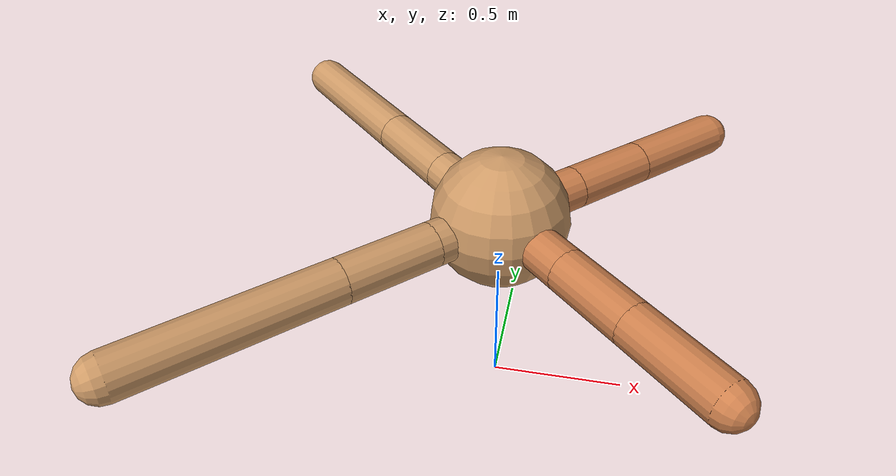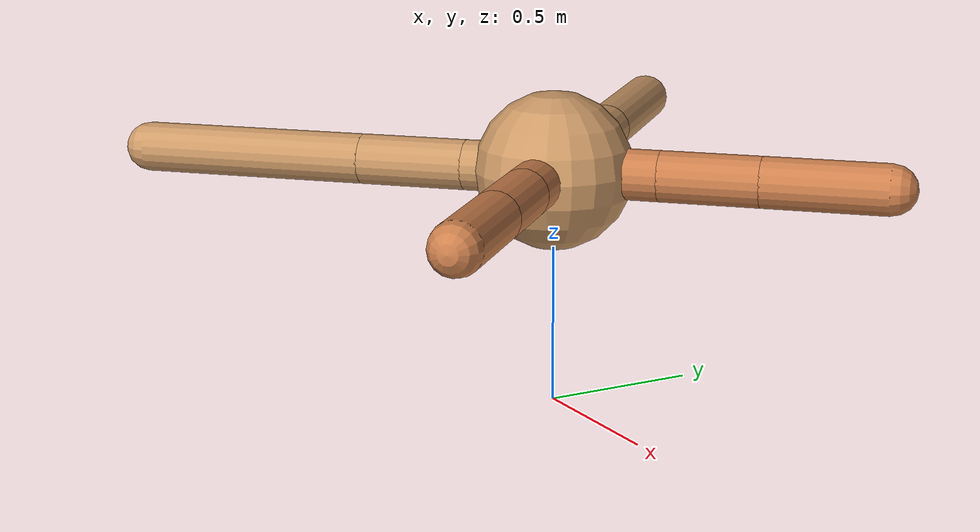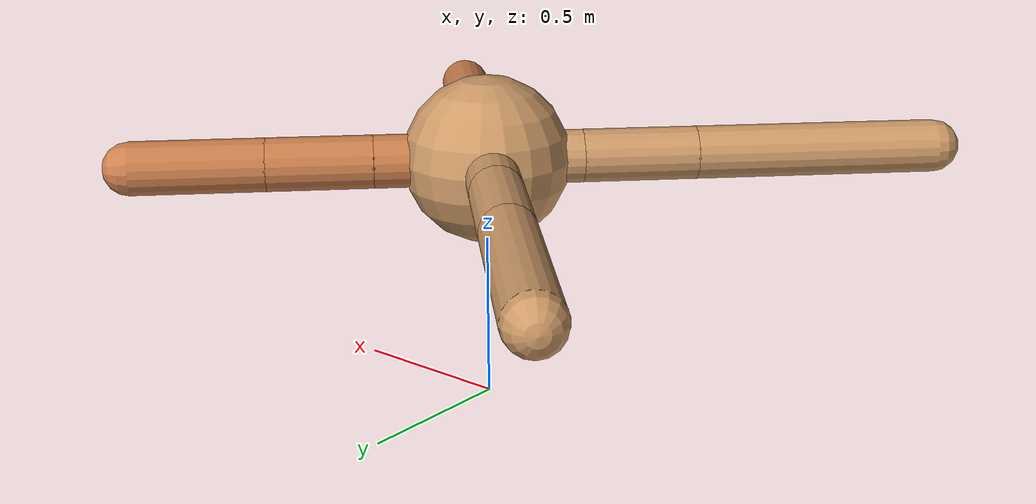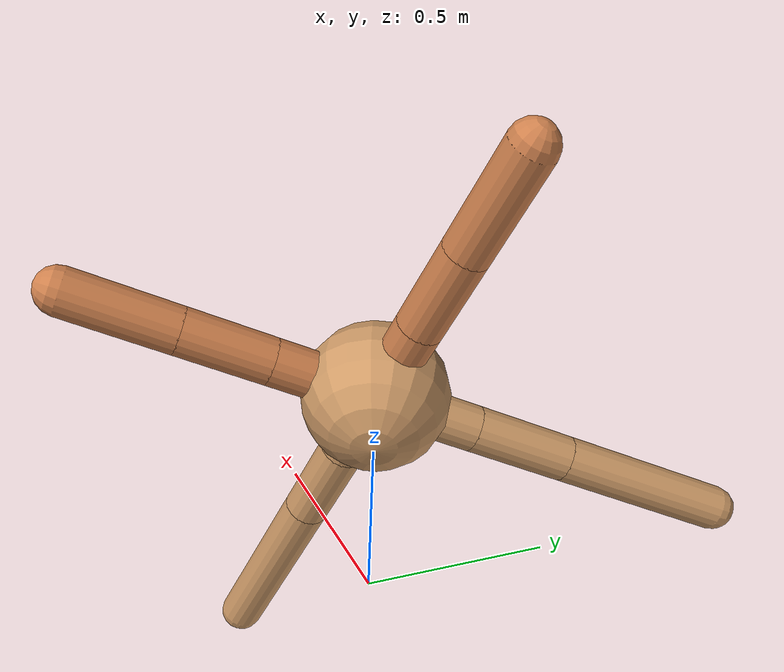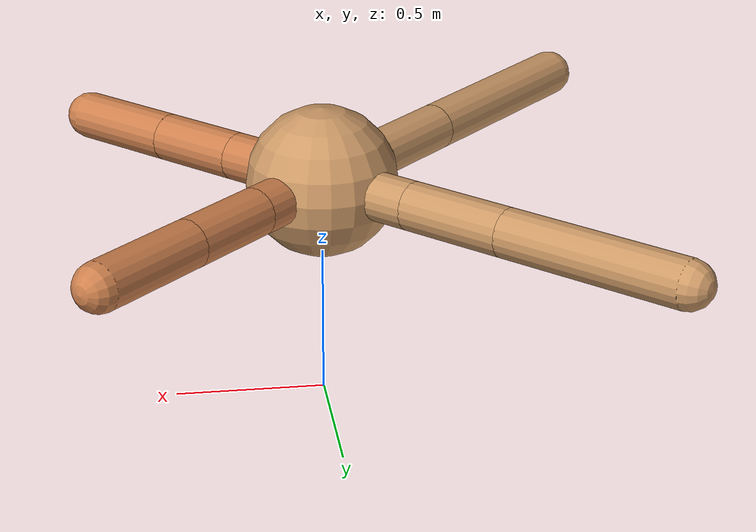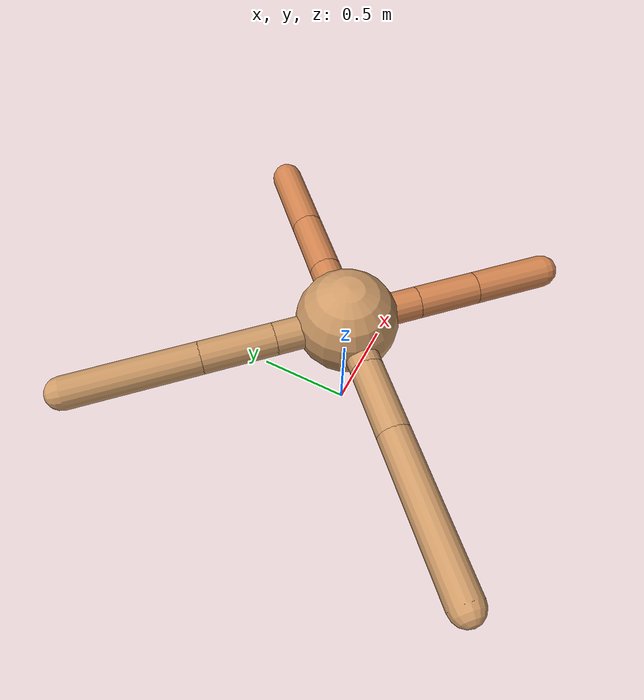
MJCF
<mujoco model="ant">
  <compiler angle="degree" coordinate="local" inertiafromgeom="true" />
  <option integrator="RK4" timestep="0.01" />
  <custom>
    <numeric data="0.0 0.0 0.55 1.0 0.0 0.0 0.0 0.0 1.0 0.0 -1.0 0.0 -1.0 0.0 1.0" name="init_qpos" />
  </custom>
  <default>
    <joint armature="1" damping="1" limited="true" />
    <geom conaffinity="0" condim="3" density="5.0" friction="1.5 0.1 0.1" margin="0.01" rgba="0.8 0.6 0.4 1" />
  </default>
  <worldbody>
    <body name="torso" pos="0 0 0.75">
      <geom name="torso_geom" pos="0 0 0" size="0.25" type="sphere" />

      <body name="front_left_leg" pos="0 0 0">
        <geom fromto="0.0 0.0 0.0 0.23801896767434227 0.23801896767434227 0.0" name="aux_1_geom" size="0.08" type="capsule" rgba=".8 .5 .3 1" />
        <body name="aux_1" pos="0.23801896767434227 0.23801896767434227 0.0">
          <joint axis="0 0 1" name="hip_1" pos="0.0 0.0 0.0" range="-40 40" type="hinge" />
          <geom fromto="0.0 0.0 0.0 0.2224427785125431 0.2224427785125431 0.0" name="left_leg_geom" size="0.08" type="capsule" rgba=".8 .5 .3 1" />
          <body pos="0.2224427785125431 0.2224427785125431 0.0" name="front_left_foot">
            <joint axis="-1 1 0" name="ankle_1" pos="0.0 0.0 0.0" range="30 100" type="hinge" />
            <geom fromto="0.0 0.0 0.0 0.27766451765167427 0.27766451765167427 0.0" name="left_ankle_geom" size="0.08" type="capsule" rgba=".8 .5 .3 1" />
          </body>
        </body>
      </body>
      <body name="front_right_leg" pos="0 0 0">
        <geom fromto="0.0 0.0 0.0 -0.25548760293637324 0.25548760293637324 0.0" name="aux_2_geom" size="0.08" type="capsule" />
        <body name="aux_2" pos="-0.25548760293637324 0.25548760293637324 0.0">
          <joint axis="0 0 1" name="hip_2" pos="0.0 0.0 0.0" range="-40 40" type="hinge" />
          <geom fromto="0.0 0.0 0.0 -0.25145212638086223 0.25145212638086223 0.0" name="right_leg_geom" size="0.08" type="capsule" />
          <body pos="-0.25145212638086223 0.25145212638086223 0.0" name="front_right_foot">
            <joint axis="1 1 0" name="ankle_2" pos="0.0 0.0 0.0" range="-100 -30" type="hinge" />
            <geom fromto="0.0 0.0 0.0 -0.4466108067620762 0.4466108067620762 0.0" name="right_ankle_geom" size="0.08" type="capsule" />
          </body>
        </body>
      </body>
      <body name="left_back_leg" pos="0 0 0">
        <geom fromto="0.0 0.0 0.0 -0.20322382158800822 -0.20322382158800822 0.0" name="aux_3_geom" size="0.08" type="capsule" />
        <body name="aux_3" pos="-0.20322382158800822 -0.20322382158800822 0.0">
          <joint axis="0 0 1" name="hip_3" pos="0.0 0.0 0.0" range="-40 40" type="hinge" />
          <geom fromto="0.0 0.0 0.0 -0.24326610040473984 -0.24326610040473984 0.0" name="back_leg_geom" size="0.08" type="capsule" />
          <body pos="-0.24326610040473984 -0.24326610040473984 0.0" name="left_back_foot">
            <joint axis="-1 1 0" name="ankle_3" pos="0.0 0.0 0.0" range="-100 -30" type="hinge" />
            <geom fromto="0.0 0.0 0.0 -0.5228395728997891 -0.5228395728997891 0.0" name="third_ankle_geom" size="0.08" type="capsule" />
          </body>
        </body>
      </body>
      <body name="right_back_leg" pos="0 0 0">
        <geom fromto="0.0 0.0 0.0 0.25719755080740914 -0.25719755080740914 0.0" name="aux_4_geom" size="0.08" type="capsule" rgba=".8 .5 .3 1" />
        <body name="aux_4" pos="0.25719755080740914 -0.25719755080740914 0.0">
          <joint axis="0 0 1" name="hip_4" pos="0.0 0.0 0.0" range="-40 40" type="hinge" />
          <geom fromto="0.0 0.0 0.0 0.21597748446625756 -0.21597748446625756 0.0" name="rightback_leg_geom" size="0.08" type="capsule" rgba=".8 .5 .3 1" />
          <body pos="0.21597748446625756 -0.21597748446625756 0.0" name="right_back_foot">
            <joint axis="1 1 0" name="ankle_4" pos="0.0 0.0 0.0" range="30 100" type="hinge" />
            <geom fromto="0.0 0.0 0.0 0.26231134626410835 -0.26231134626410835 0.0" name="fourth_ankle_geom" size="0.08" type="capsule" rgba=".8 .5 .3 1" />
          </body>
        </body>
      </body>
    </body>
  </worldbody>
  <actuator>
    <motor ctrllimited="true" ctrlrange="-1.0 1.0" joint="hip_4" gear="150" />
    <motor ctrllimited="true" ctrlrange="-1.0 1.0" joint="ankle_4" gear="150" />
    <motor ctrllimited="true" ctrlrange="-1.0 1.0" joint="hip_1" gear="150" />
    <motor ctrllimited="true" ctrlrange="-1.0 1.0" joint="ankle_1" gear="150" />
    <motor ctrllimited="true" ctrlrange="-1.0 1.0" joint="hip_2" gear="150" />
    <motor ctrllimited="true" ctrlrange="-1.0 1.0" joint="ankle_2" gear="150" />
    <motor ctrllimited="true" ctrlrange="-1.0 1.0" joint="hip_3" gear="150" />
    <motor ctrllimited="true" ctrlrange="-1.0 1.0" joint="ankle_3" gear="150" />
  </actuator>
</mujoco>
